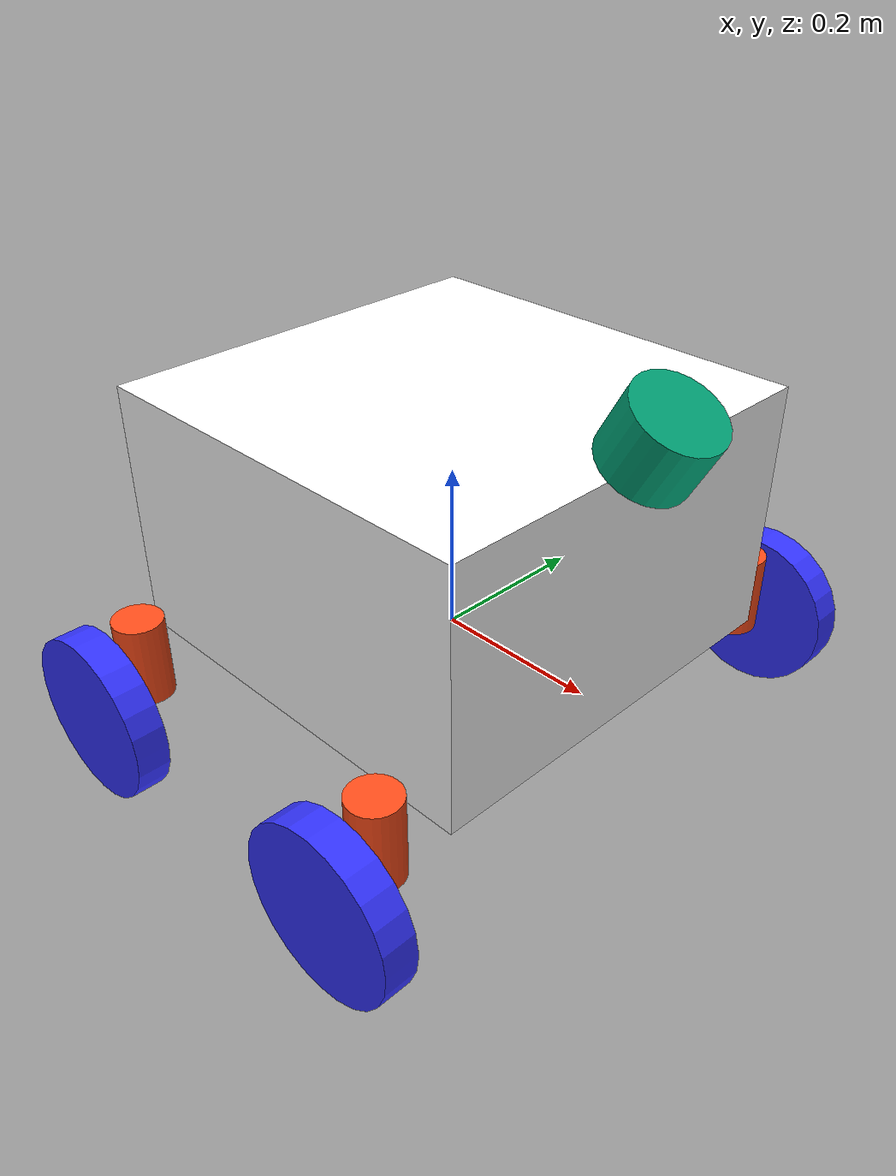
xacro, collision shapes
<?xml version="1.0"?>
<robot name="Farmbeast" xmlns:xacro="http://www.ros.org/wiki/xacro" >

    <xacro:include filename="$(find farmbeast_simulation)/urdf/include/inertial_macros.xacro"/>

    <material name="white">
        <color rgba="1 1 1 1" />
    </material>

    <material name="orange">
        <color rgba="1 0.3 0.1 1"/>
    </material>

    <material name="blue">
        <color rgba="0.2 0.2 1 1"/>
    </material>

    <material name="black">
        <color rgba="0 0 0 1"/>
    </material>

    <!-- BASE LINK -->

    <link name="base_link">
    </link>

    <!-- CHASSIS LINK -->

    <joint name="chassis_joint" type="fixed">
        <parent link="base_link"/>
        <child link="chassis"/>
        <origin xyz="0 0 0.15"/>
    </joint>

    <link name="chassis">
        <visual>
            <origin xyz="0 0 0"/>
            <geometry>
                <box size="0.5 0.5 0.3"/>
            </geometry>
            <material name="white"/>
        </visual>
        <collision>
            <origin xyz="0 0 0"/>
            <geometry>
                <box size="0.5 0.5 0.3"/>
            </geometry>
        </collision>
        <xacro:inertial_box mass="2" x="0.5" y="0.5" z="0.3">
            <origin xyz="0 0 0" rpy="0 0 0"/>
        </xacro:inertial_box>
    </link>

    <gazebo reference="chassis">
        <material>Gazebo/White</material>
    </gazebo>

    <!-- Left front z axis -->
    <joint name="left_front_z_axis_joint" type="revolute">
        <parent link="base_link"/>
        <child link="left_front_z_axis"/>
        <origin xyz="0.2 0.3 0" rpy="0 0 0" />
        <axis xyz="0 0 1"/>
        <limit lower="-0.9" upper="0.9" effort="1" velocity="5"/>
    </joint>
    <link name="left_front_z_axis">
        <visual>
            <geometry>
                <cylinder radius="0.03" length="0.1"/>
            </geometry>
            <material name="orange"/>
        </visual>
        <collision>
            <geometry>
               <cylinder radius="0.03" length="0.1"/>
            </geometry>
        </collision>
        <xacro:inertial_cylinder mass="0.1" length="0.06" radius="0.02">
            <origin xyz="0 0 0" rpy="0 0 0"/>
        </xacro:inertial_cylinder>
    </link>

    <transmission name="left_front_z_axis_trans">
      <type>transmission_interface/SimpleTransmission</type>
      <joint name="left_front_z_axis_joint">
        <hardwareInterface>hardware_interface/PositionJointInterface</hardwareInterface>
      </joint>
      <actuator name="left_front_z_axis_actuator">
        <mechanicalReduction>1</mechanicalReduction>
      </actuator>
    </transmission>

    <gazebo reference="left_front_z_axis">
        <material>Gazebo/Orange</material>
    </gazebo>
    <!-- left front wheel -->

    <joint name="left_front_wheel_joint" type="continuous">
        <parent link="left_front_z_axis"/>
        <child link="left_front_wheel"/>
        <origin xyz="0 0.06 -0.05" rpy="-${pi/2} 0 0" />
        <axis xyz="0 0 1"/>
    </joint>

    <link name="left_front_wheel">
        <visual>
            <geometry>
                <cylinder radius="0.1" length="0.04"/>
            </geometry>
            <material name="blue"/>
        </visual>
        <collision>
            <geometry>
                <cylinder radius="0.1" length="0.04"/>
            </geometry>
        </collision>
        <xacro:inertial_cylinder mass="0.1" length="0.04" radius="0.05">
            <origin xyz="0 0 0" rpy="0 0 0"/>
        </xacro:inertial_cylinder>
    </link>

    <transmission name="left_front_wheel_trans">
      <type>transmission_interface/SimpleTransmission</type>
      <joint name="left_front_wheel_joint">
        <hardwareInterface>hardware_interface/VelocityJointInterface</hardwareInterface>
      </joint>
      <actuator name="left_front_wheel_actuator">
        <mechanicalReduction>1</mechanicalReduction>
      </actuator>
    </transmission>

    <gazebo reference="left_front_wheel">
        <material>Gazebo/Blue</material>
        <mu1 value="200"/>
        <mu2 value="100"/>
    </gazebo>

    <!-- Left back z axis -->
    <joint name="left_back_z_axis_joint" type="revolute">
        <parent link="base_link"/>
        <child link="left_back_z_axis"/>
        <origin xyz="-0.2 0.3 0" rpy="0 0 0" />
        <axis xyz="0 0 1"/>
        <limit lower="-0.9" upper="0.9" effort="1" velocity="5"/>
    </joint>
    <link name="left_back_z_axis">
        <visual>
            <geometry>
                <cylinder radius="0.03" length="0.1"/>
            </geometry>
            <material name="orange"/>
        </visual>
        <collision>
            <geometry>
               <cylinder radius="0.03" length="0.1"/>
            </geometry>
        </collision>
        <xacro:inertial_cylinder mass="0.1" length="0.06" radius="0.02">
            <origin xyz="0 0 0" rpy="0 0 0"/>
        </xacro:inertial_cylinder>
    </link>

    <transmission name="left_back_z_axis_trans">
      <type>transmission_interface/SimpleTransmission</type>
      <joint name="left_back_z_axis_joint">
        <hardwareInterface>hardware_interface/PositionJointInterface</hardwareInterface>
      </joint>
      <actuator name="left_back_z_axis_actuator">
        <mechanicalReduction>1</mechanicalReduction>
      </actuator>
    </transmission>

    <gazebo reference="left_back_z_axis">
        <material>Gazebo/Orange</material>
    </gazebo>

    <!-- left back wheel -->

    <joint name="left_back_wheel_joint" type="continuous">
        <parent link="left_back_z_axis"/>
        <child link="left_back_wheel"/>
        <origin xyz="0 0.06 -0.05" rpy="-${pi/2} 0 0" />
        <axis xyz="0 0 1"/>
    </joint>

    <link name="left_back_wheel">
        <visual>
            <geometry>
                <cylinder radius="0.1" length="0.04"/>
            </geometry>
            <material name="blue"/>
        </visual>
        <collision>
            <geometry>
                <cylinder radius="0.1" length="0.04"/>
            </geometry>
        </collision>
        <xacro:inertial_cylinder mass="0.1" length="0.04" radius="0.05">
            <origin xyz="0 0 0" rpy="0 0 0"/>
        </xacro:inertial_cylinder>
    </link>

    <transmission name="left_back_wheel_trans">
      <type>transmission_interface/SimpleTransmission</type>
      <joint name="left_back_wheel_joint">
        <hardwareInterface>hardware_interface/VelocityJointInterface</hardwareInterface>
      </joint>
      <actuator name="left_back_wheel_actuator">
        <mechanicalReduction>1</mechanicalReduction>
      </actuator>
    </transmission>

    <gazebo reference="left_back_wheel">
        <material>Gazebo/Blue</material>
        <mu1 value="200"/>
        <mu2 value="100"/>
    </gazebo>

    <!-- right front z axis -->
    <joint name="right_front_z_axis_joint" type="revolute">
        <parent link="base_link"/>
        <child link="right_front_z_axis"/>
        <origin xyz="0.2 -0.3 0" rpy="0 0 0" />
        <axis xyz="0 0 1"/>
        <limit lower="-0.9" upper="0.9" effort="1" velocity="5"/>
    </joint>
    <link name="right_front_z_axis">
        <visual>
            <geometry>
                <cylinder radius="0.03" length="0.1"/>
            </geometry>
            <material name="orange"/>
        </visual>
        <collision>
            <geometry>
                <cylinder radius="0.03" length="0.1"/>
            </geometry>
        </collision>
        <xacro:inertial_cylinder mass="0.1" length="0.06" radius="0.02">
            <origin xyz="0 0 0" rpy="0 0 0"/>
        </xacro:inertial_cylinder>
    </link>

    <transmission name="right_front_z_axis_trans">
      <type>transmission_interface/SimpleTransmission</type>
      <joint name="right_front_z_axis_joint">
        <hardwareInterface>hardware_interface/PositionJointInterface</hardwareInterface>
      </joint>
      <actuator name="right_front_z_axis_actuator">
        <mechanicalReduction>1</mechanicalReduction>
      </actuator>
    </transmission>

    <gazebo reference="right_front_z_axis">
        <material>Gazebo/Orange</material>
    </gazebo>

    <!-- right front wheel -->

    <joint name="right_front_wheel_joint" type="continuous">
        <parent link="right_front_z_axis"/>
        <child link="right_front_wheel"/>
        <origin xyz="0 -0.06 -0.05" rpy="-${pi/2} 0 0" />
        <axis xyz="0 0 1"/>
    </joint>

    <link name="right_front_wheel">
        <visual>
            <geometry>
                <cylinder radius="0.1" length="0.04"/>
            </geometry>
            <material name="blue"/>
        </visual>
        <collision>
            <geometry>
               <cylinder radius="0.1" length="0.04"/>
            </geometry>
        </collision>
        <xacro:inertial_cylinder mass="0.1" length="0.04" radius="0.05">
            <origin xyz="0 0 0" rpy="0 0 0"/>
        </xacro:inertial_cylinder>
    </link>

    <transmission name="right_front_wheel_trans">
      <type>transmission_interface/SimpleTransmission</type>
      <joint name="right_front_wheel_joint">
        <hardwareInterface>hardware_interface/VelocityJointInterface</hardwareInterface>
      </joint>
      <actuator name="right_front_wheel_actuator">
        <mechanicalReduction>1</mechanicalReduction>
      </actuator>
    </transmission>

    <gazebo reference="right_front_wheel">
        <material>Gazebo/Blue</material>
        <mu1 value="200"/>
        <mu2 value="100"/>
    </gazebo>

    <!-- right back z axis -->
    <joint name="right_back_z_axis_joint" type="revolute">
        <parent link="base_link"/>
        <child link="right_back_z_axis"/>
        <origin xyz="-0.2 -0.3 0" rpy="0 0 0" />
        <axis xyz="0 0 1"/>
        <limit lower="-0.9" upper="0.9" effort="1" velocity="5"/>
    </joint>
    <link name="right_back_z_axis">
        <visual>
            <geometry>
                <cylinder radius="0.03" length="0.1"/>
            </geometry>
            <material name="orange"/>
        </visual>
        <collision>
            <geometry>
                <cylinder radius="0.03" length="0.1"/>
            </geometry>
        </collision>
        <xacro:inertial_cylinder mass="0.1" length="0.06" radius="0.02">
            <origin xyz="0 0 0" rpy="0 0 0"/>
        </xacro:inertial_cylinder>
    </link>

    <transmission name="right_back_z_axis_trans">
      <type>transmission_interface/SimpleTransmission</type>
      <joint name="right_back_z_axis_joint">
        <hardwareInterface>hardware_interface/PositionJointInterface</hardwareInterface>
      </joint>
      <actuator name="right_back_z_axis_actuator">
        <mechanicalReduction>1</mechanicalReduction>
      </actuator>
    </transmission>

    <gazebo reference="right_back_z_axis">
        <material>Gazebo/Orange</material>
    </gazebo>

    <!-- right back wheel -->

    <joint name="right_back_wheel_joint" type="continuous">
        <parent link="right_back_z_axis"/>
        <child link="right_back_wheel"/>
        <origin xyz="0 -0.06 -0.05" rpy="-${pi/2} 0 0" />
        <axis xyz="0 0 1"/>
    </joint>

    <link name="right_back_wheel">
        <visual>
            <geometry>
                <cylinder radius="0.1" length="0.04"/>
            </geometry>
            <material name="blue"/>
        </visual>
        <collision>
            <geometry>
                <cylinder radius="0.1" length="0.04"/>
            </geometry>
        </collision>
        <xacro:inertial_cylinder mass="0.1" length="0.04" radius="0.05">
            <origin xyz="0 0 0" rpy="0 0 0"/>
        </xacro:inertial_cylinder>
    </link>

    <transmission name="right_back_wheel_trans">
      <type>transmission_interface/SimpleTransmission</type>
      <joint name="right_back_wheel_joint">
        <hardwareInterface>hardware_interface/VelocityJointInterface</hardwareInterface>
      </joint>
      <actuator name="right_back_wheel_actuator">
        <mechanicalReduction>1</mechanicalReduction>
      </actuator>
    </transmission>

    <gazebo reference="right_back_wheel">
        <material>Gazebo/Blue</material>
        <mu1 value="200"/>
        <mu2 value="100"/>
    </gazebo>

    <!-- ROS cotntroll-->
    <gazebo>
        <plugin name="gazebo_ros_control" filename="libgazebo_ros_control.so">
            <robotNamespace>/farmbeast</robotNamespace>
        </plugin>
    </gazebo>

    <!--Velodyne include-->
    <xacro:arg name="gpu" default="false"/>
    <xacro:property name="gpu" value="$(arg gpu)" />
    <xacro:arg name="organize_cloud" default="false"/>
    <xacro:property name="organize_cloud" value="$(arg organize_cloud)" />
    <xacro:include filename="$(find velodyne_description)/urdf/VLP-16.urdf.xacro"/>
    <xacro:VLP-16 parent="base_link" name="velodyne" topic="/velodyne_points" organize_cloud="${organize_cloud}" hz="10" samples="440" gpu="${gpu}" min_range="0.1" max_range="10.0" >
        <origin xyz="0.25 0 0.3" rpy="0 0.5 0" />
     </xacro:VLP-16>

</robot>

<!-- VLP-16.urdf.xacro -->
<robot xmlns:xacro="http://www.ros.org/wiki/xacro" name="VLP-16">
  <xacro:property name="M_PI" value="3.1415926535897931" />
  <xacro:macro name="VLP-16" params="*origin is_sim:=true parent:=base_link name:=velodyne tf_prefix:='' topic:=/velodyne_points organize_cloud:=false hz:=10 lasers:=16 samples:=1875 collision_range:=0.3 min_range:=0.0 max_range:=100.0 noise:=0.008 min_angle:=-${M_PI} max_angle:=${M_PI} gpu:=false">

    <joint name="${name}_base_mount_joint" type="fixed">
      <xacro:insert_block name="origin" />
      <parent link="${parent}"/>
      <child link="${name}_base_link"/>
    </joint>

    <link name="${name}_base_link">
      <inertial>
        <mass value="0.83"/>
        <origin xyz="0 0 0.03585"/>
        <inertia ixx="${(0.83 * (3.0*0.0516*0.0516 + 0.0717*0.0717)) / 12.0}" ixy="0" ixz="0"
          iyy="${(0.83 * (3.0*0.0516*0.0516 + 0.0717*0.0717)) / 12.0}" iyz="0"
          izz="${0.5 * 0.83 * (0.0516*0.0516)}"/>
      </inertial>
      <visual>
        <geometry>
          <mesh filename="package://velodyne_description/meshes/VLP16_base_1.dae" />
        </geometry>
      </visual>
      <visual>
        <geometry>
          <mesh filename="package://velodyne_description/meshes/VLP16_base_2.dae" />
        </geometry>
      </visual>
      <collision>
        <origin rpy="0 0 0" xyz="0 0 0.03585"/>
        <geometry>
          <cylinder radius="0.0516" length="0.0717"/>
        </geometry>
      </collision>
    </link>

    <joint name="${name}_base_scan_joint" type="fixed" >
      <origin xyz="0 0 0.0377" rpy="0 0 0" />
      <parent link="${name}_base_link" />
      <child link="${name}"/>
    </joint>

    <link name="${name}">
      <inertial>
        <mass value="0.01"/>
        <origin xyz="0 0 0"/>
        <inertia ixx="1e-7" ixy="0" ixz="0" iyy="1e-7" iyz="0" izz="1e-7"/>
      </inertial>
      <visual>
        <origin xyz="0 0 -0.0377" />
        <geometry>
          <mesh filename="package://velodyne_description/meshes/VLP16_scan.dae" />
        </geometry>
      </visual>
      <collision>
        <geometry>
          <sphere radius="0"/>
        </geometry>
      </collision>
    </link>

    <!-- Gazebo requires the velodyne_gazebo_plugins package -->
    <xacro:if value="${is_sim}">
        <gazebo reference="${name}">
            <xacro:if value="${gpu}">
                <sensor type="gpu_ray" name="${name}-VLP16">
                <pose>0 0 0 0 0 0</pose>
                <visualize>false</visualize>
                <update_rate>${hz}</update_rate>
                <ray>
                    <scan>
                    <horizontal>
                        <samples>${samples}</samples>
                        <resolution>1</resolution>
                        <min_angle>${min_angle}</min_angle>
                        <max_angle>${max_angle}</max_angle>
                    </horizontal>
                    <vertical>
                        <samples>${lasers}</samples>
                        <resolution>1</resolution>
                        <min_angle>-${15.0*M_PI/180.0}</min_angle>
                        <max_angle> ${15.0*M_PI/180.0}</max_angle>
                    </vertical>
                    </scan>
                    <range>
                    <min>${collision_range}</min>
                    <max>${max_range+1}</max>
                    <resolution>0.001</resolution>
                    </range>
                    <noise>
                    <type>gaussian</type>
                    <mean>0.0</mean>
                    <stddev>0.0</stddev>
                    </noise>
                </ray>
                <plugin name="gazebo_ros_laser_controller" filename="libgazebo_ros_velodyne_laser.so">
                    <ros>
                    <namespace>/${name}</namespace>
                    <remapping>~/out:=${topic}</remapping>
                    </ros>
                    <tf_prefix>${tf_prefix}</tf_prefix>
                    <frame_name>${name}</frame_name>
                    <organize_cloud>${organize_cloud}</organize_cloud>
                    <min_range>${min_range}</min_range>
                    <max_range>${max_range}</max_range>
                    <gaussian_noise>${noise}</gaussian_noise>
                </plugin>
                </sensor>
            </xacro:if>
            <xacro:unless value="${gpu}">
                <sensor type="ray" name="${name}-VLP16">
                <pose>0 0 0 0 0 0</pose>
                <visualize>false</visualize>
                <update_rate>${hz}</update_rate>
                <ray>
                    <scan>
                    <horizontal>
                        <samples>${samples}</samples>
                        <resolution>1</resolution>
                        <min_angle>${min_angle}</min_angle>
                        <max_angle>${max_angle}</max_angle>
                    </horizontal>
                    <vertical>
                        <samples>${lasers}</samples>
                        <resolution>1</resolution>
                        <min_angle>-${15.0*M_PI/180.0}</min_angle>
                        <max_angle> ${15.0*M_PI/180.0}</max_angle>
                    </vertical>
                    </scan>
                    <range>
                    <min>${collision_range}</min>
                    <max>${max_range+1}</max>
                    <resolution>0.001</resolution>
                    </range>
                    <noise>
                    <type>gaussian</type>
                    <mean>0.0</mean>
                    <stddev>0.0</stddev>
                    </noise>
                </ray>
                <plugin name="gazebo_ros_laser_controller" filename="libgazebo_ros_velodyne_laser.so">
                    <ros>
                    <namespace>/${name}</namespace>
                    <remapping>~/out:=${topic}</remapping>
                    </ros>
                    <tf_prefix>${tf_prefix}</tf_prefix>
                    <frame_name>${name}</frame_name>
                    <organize_cloud>${organize_cloud}</organize_cloud>
                    <min_range>${min_range}</min_range>
                    <max_range>${max_range}</max_range>
                    <gaussian_noise>${noise}</gaussian_noise>
                </plugin>
                </sensor>
            </xacro:unless>
        </gazebo>
    </xacro:if>

  </xacro:macro>
</robot>
